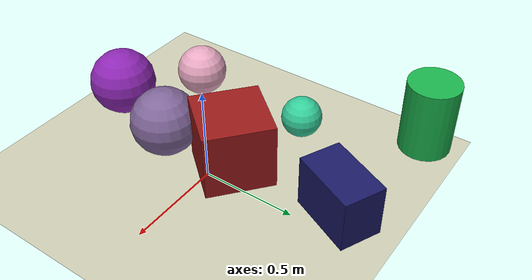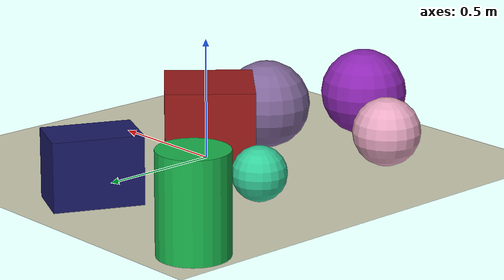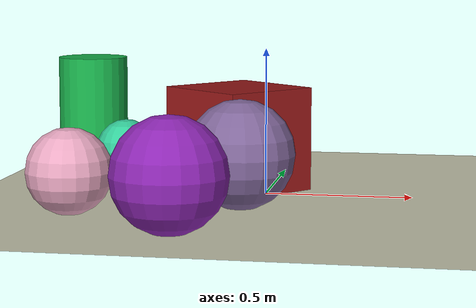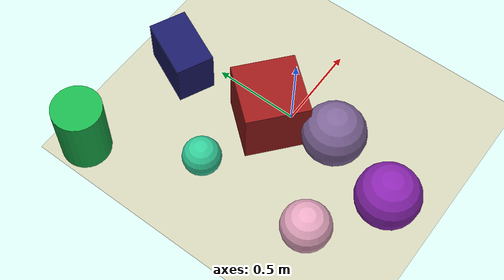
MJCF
<mujoco>
   <asset>
<texture type="skybox" builtin="gradient" rgb1="1.0 0.9 0.6" rgb2="1.0 0.9 0.1" width="256" height="256"/>
<texture name="gradient_0" builtin="gradient" rgb1="0.9 0.0 0.6" rgb2="0.2 0.3 0.8" width="200" height="200"/>
<texture name="gradient_1" builtin="gradient" rgb1="0.8 0.2 1.0" rgb2="0.2 0.6 0.2" width="200" height="200"/>
<texture name="flat_2" builtin="flat" rgb1="0.1 0.7 0.3" rgb2="0.1 0.7 0.3"  width="200" height="200"/>
<texture name="flat_3" builtin="flat" rgb1="0.2 0.8 0.6" rgb2="0.2 0.8 0.6"  width="200" height="200"/>
<texture name="flat_4" builtin="flat" rgb1="0.1 0.1 0.4" rgb2="0.1 0.1 0.4"  width="200" height="200"/>
<texture name="flat_5" builtin="flat" rgb1="0.6 0.1 0.1" rgb2="0.6 0.1 0.1"  width="200" height="200"/>
<texture name="gradient_6" builtin="gradient" rgb1="1.0 0.5 1.0" rgb2="0.8 0.8 0.5" width="200" height="200"/><material name="gradient_0_mat" reflectance="0" texture="gradient_0" texuniform="true"/>
<material name="gradient_1_mat" reflectance="0" texture="gradient_1" texuniform="true"/>
<material name="flat_2_mat" reflectance="0" texture="flat_2" texuniform="true"/>
<material name="flat_3_mat" reflectance="0" texture="flat_3" texuniform="true"/>
<material name="flat_4_mat" reflectance="0" texture="flat_4" texuniform="true"/>
<material name="flat_5_mat" reflectance="0" texture="flat_5" texuniform="true"/>
<material name="gradient_6_mat" reflectance="0" texture="gradient_6" texuniform="true"/>
   </asset>

   <worldbody>
      <light diffuse=".9 .9 .9" pos="0 0 3" dir="0 0 -1"/>
     <geom type="plane" size="1 1 0.1" rgba="0.8 0.8 0.7 1"/>
<geom type="sphere" pos="-0.18 -0.73 0.18" size="0.18 0.18 0.18" material="gradient_0_mat" euler="0 0 6" />
<geom type="sphere" pos="-0.04 -0.3 0.18" size="0.18 0.18 0.18" material="gradient_1_mat" euler="0 0 15" />
<geom type="cylinder" pos="-0.84 0.8 0.2" size="0.14 0.2 0.2" material="flat_2_mat" euler="0 0 3" />
<geom type="sphere" pos="-0.55 0.21 0.11" size="0.11 0.11 0.11" material="flat_3_mat" euler="0 0 54" />
<geom type="box" pos="-0.12 0.69 0.14" size="0.18 0.11 0.14" material="flat_4_mat" euler="0 0 65" />
<geom type="box" pos="-0.11 0.08 0.18" size="0.18 0.18 0.18" material="flat_5_mat" euler="0 0 50" />
<geom type="sphere" pos="-0.56 -0.48 0.14" size="0.14 0.14 0.14" material="gradient_6_mat" euler="0 0 8" /><camera euler="60 0 180" fovy="60" name="camera1" pos="-0.2 -1.5 1"></camera>   </worldbody>
</mujoco>
